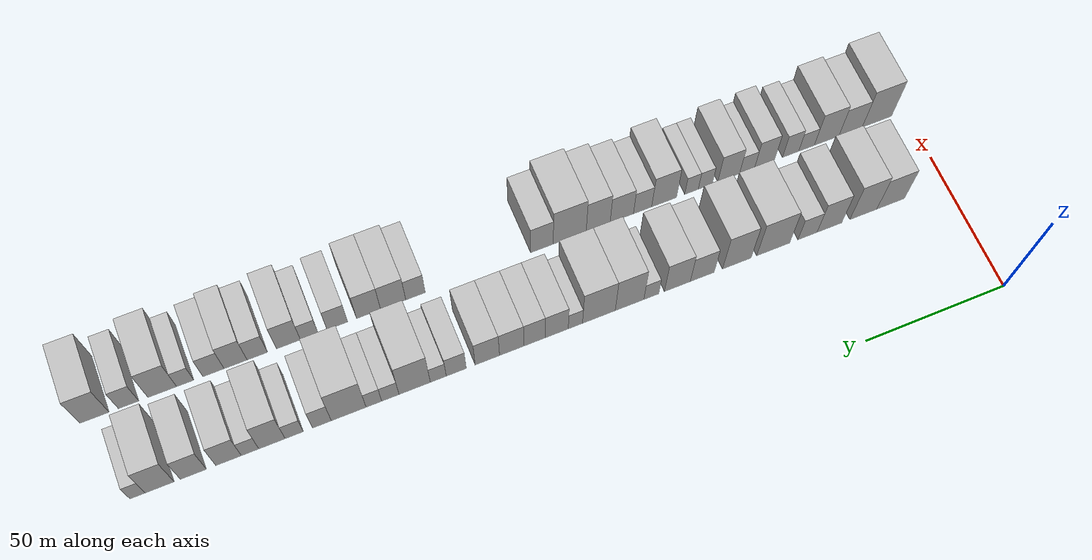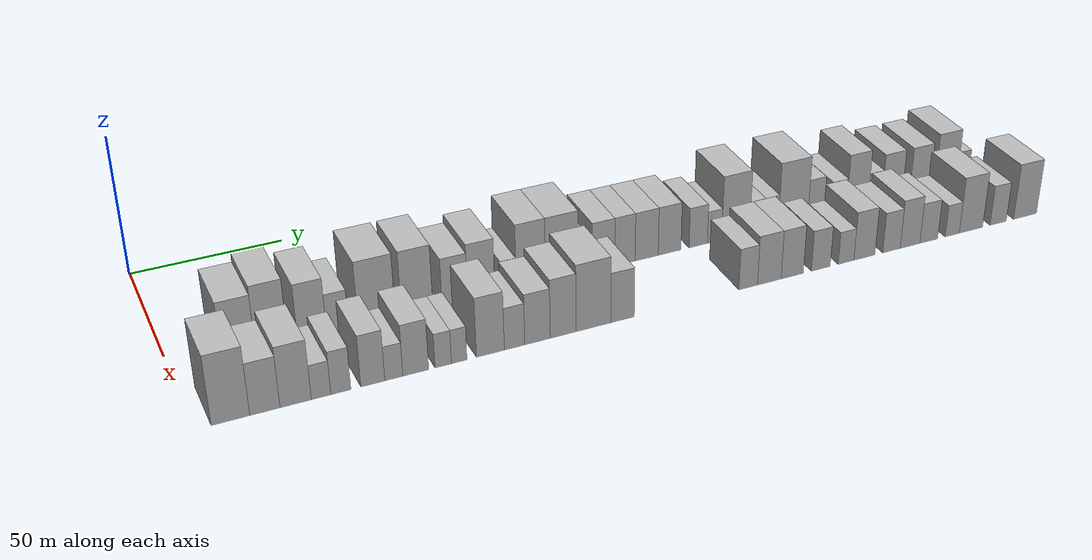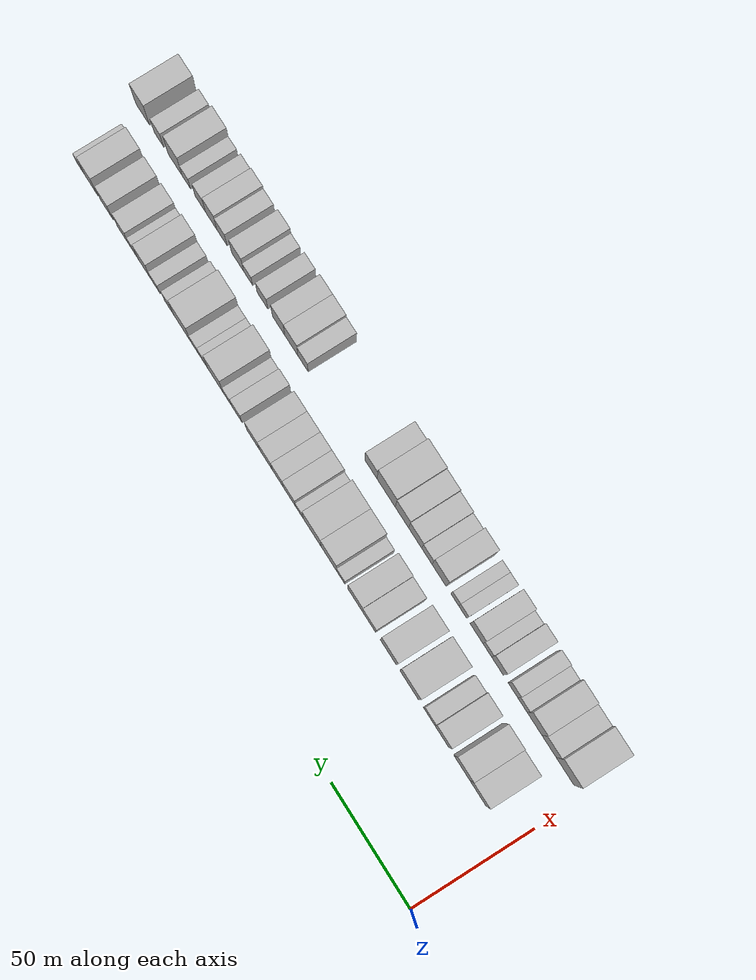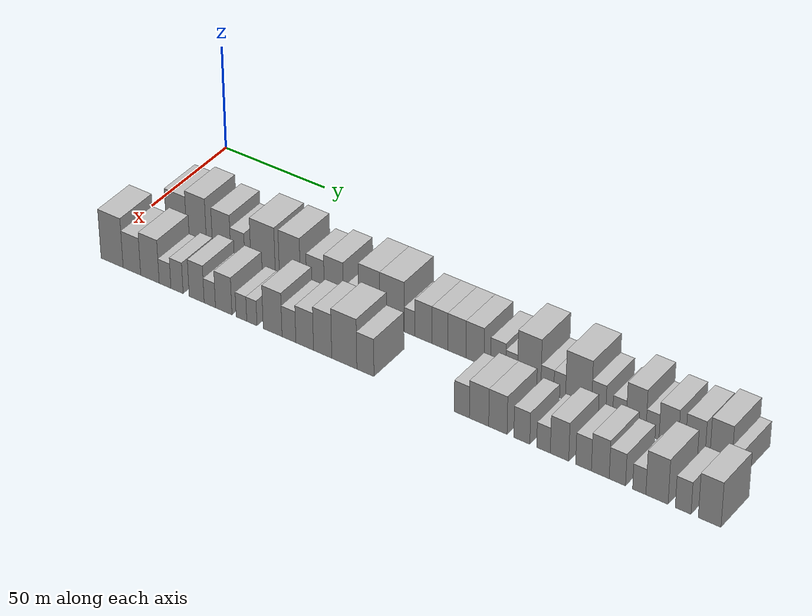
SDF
<sdf version="1.6">
 <world name="default">
  <model name="building_30">
   <static>1</static>
   <pose>50.0000 20.4144 0 0.000000 0.000000 0.000000</pose>
   <link name="link">
    <pose>0 0 10.50 0 0 0</pose>
    <collision name="collision"><geometry><box><size>20.0000 10.2836 21.0000</size></box></geometry></collision>
    <visual name="visual">
     <cast_shadows>0</cast_shadows>
     <geometry><box><size>20.0000 10.2836 21.0000</size></box></geometry>
     <material>
      <script>
       <uri>model://HANNAS_wall/materials/scripts</uri>
       <uri>model://HANNAS_wall/materials/textures</uri>
       <name>vrc/HANNAS_wall</name>
      </script>
     </material>
    </visual>
   </link>
  </model>
  <model name="building_31">
   <static>1</static>
   <pose>50.0000 30.5197 0 0.000000 0.000000 0.000000</pose>
   <link name="link">
    <pose>0 0 12.00 0 0 0</pose>
    <collision name="collision"><geometry><box><size>20.0000 9.9270 24.0000</size></box></geometry></collision>
    <visual name="visual">
     <cast_shadows>0</cast_shadows>
     <geometry><box><size>20.0000 9.9270 24.0000</size></box></geometry>
     <material>
      <script>
       <uri>model://HANNAS_wall/materials/scripts</uri>
       <uri>model://HANNAS_wall/materials/textures</uri>
       <name>vrc/HANNAS_wall</name>
      </script>
     </material>
    </visual>
   </link>
  </model>
  <model name="building_32">
   <static>1</static>
   <pose>50.0000 43.0216 0 0.000000 0.000000 0.000000</pose>
   <link name="link">
    <pose>0 0 10.50 0 0 0</pose>
    <collision name="collision"><geometry><box><size>20.0000 9.0767 21.0000</size></box></geometry></collision>
    <visual name="visual">
     <cast_shadows>0</cast_shadows>
     <geometry><box><size>20.0000 9.0767 21.0000</size></box></geometry>
     <material>
      <script>
       <uri>model://HANNAS_wall/materials/scripts</uri>
       <uri>model://HANNAS_wall/materials/textures</uri>
       <name>vrc/HANNAS_wall</name>
      </script>
     </material>
    </visual>
   </link>
  </model>
  <model name="building_33">
   <static>1</static>
   <pose>50.0000 51.0363 0 0.000000 0.000000 0.000000</pose>
   <link name="link">
    <pose>0 0 7.50 0 0 0</pose>
    <collision name="collision"><geometry><box><size>20.0000 6.9528 15.0000</size></box></geometry></collision>
    <visual name="visual">
     <cast_shadows>0</cast_shadows>
     <geometry><box><size>20.0000 6.9528 15.0000</size></box></geometry>
     <material>
      <script>
       <uri>model://HANNAS_wall/materials/scripts</uri>
       <uri>model://HANNAS_wall/materials/textures</uri>
       <name>vrc/HANNAS_wall</name>
      </script>
     </material>
    </visual>
   </link>
  </model>
  <model name="building_34">
   <static>1</static>
   <pose>50.0000 63.4935 0 0.000000 0.000000 0.000000</pose>
   <link name="link">
    <pose>0 0 12.00 0 0 0</pose>
    <collision name="collision"><geometry><box><size>20.0000 11.9616 24.0000</size></box></geometry></collision>
    <visual name="visual">
     <cast_shadows>0</cast_shadows>
     <geometry><box><size>20.0000 11.9616 24.0000</size></box></geometry>
     <material>
      <script>
       <uri>model://HANNAS_wall/materials/scripts</uri>
       <uri>model://HANNAS_wall/materials/textures</uri>
       <name>vrc/HANNAS_wall</name>
      </script>
     </material>
    </visual>
   </link>
  </model>
  <model name="building_35">
   <static>1</static>
   <pose>50.0000 76.6014 0 0.000000 0.000000 0.000000</pose>
   <link name="link">
    <pose>0 0 12.00 0 0 0</pose>
    <collision name="collision"><geometry><box><size>20.0000 10.2541 24.0000</size></box></geometry></collision>
    <visual name="visual">
     <cast_shadows>0</cast_shadows>
     <geometry><box><size>20.0000 10.2541 24.0000</size></box></geometry>
     <material>
      <script>
       <uri>model://HANNAS_wall/materials/scripts</uri>
       <uri>model://HANNAS_wall/materials/textures</uri>
       <name>vrc/HANNAS_wall</name>
      </script>
     </material>
    </visual>
   </link>
  </model>
  <model name="building_36">
   <static>1</static>
   <pose>50.0000 88.9889 0 0.000000 0.000000 0.000000</pose>
   <link name="link">
    <pose>0 0 9.00 0 0 0</pose>
    <collision name="collision"><geometry><box><size>20.0000 8.5208 18.0000</size></box></geometry></collision>
    <visual name="visual">
     <cast_shadows>0</cast_shadows>
     <geometry><box><size>20.0000 8.5208 18.0000</size></box></geometry>
     <material>
      <script>
       <uri>model://HANNAS_wall/materials/scripts</uri>
       <uri>model://HANNAS_wall/materials/textures</uri>
       <name>vrc/HANNAS_wall</name>
      </script>
     </material>
    </visual>
   </link>
  </model>
  <model name="building_37">
   <static>1</static>
   <pose>50.0000 97.8309 0 0.000000 0.000000 0.000000</pose>
   <link name="link">
    <pose>0 0 10.50 0 0 0</pose>
    <collision name="collision"><geometry><box><size>20.0000 9.1632 21.0000</size></box></geometry></collision>
    <visual name="visual">
     <cast_shadows>0</cast_shadows>
     <geometry><box><size>20.0000 9.1632 21.0000</size></box></geometry>
     <material>
      <script>
       <uri>model://HANNAS_wall/materials/scripts</uri>
       <uri>model://HANNAS_wall/materials/textures</uri>
       <name>vrc/HANNAS_wall</name>
      </script>
     </material>
    </visual>
   </link>
  </model>
  <model name="building_38">
   <static>1</static>
   <pose>50.0000 107.0473 0 0.000000 0.000000 0.000000</pose>
   <link name="link">
    <pose>0 0 6.00 0 0 0</pose>
    <collision name="collision"><geometry><box><size>20.0000 5.2696 12.0000</size></box></geometry></collision>
    <visual name="visual">
     <cast_shadows>0</cast_shadows>
     <geometry><box><size>20.0000 5.2696 12.0000</size></box></geometry>
     <material>
      <script>
       <uri>model://HANNAS_wall/materials/scripts</uri>
       <uri>model://HANNAS_wall/materials/textures</uri>
       <name>vrc/HANNAS_wall</name>
      </script>
     </material>
    </visual>
   </link>
  </model>
  <model name="building_39">
   <static>1</static>
   <pose>50.0000 114.6969 0 0.000000 0.000000 0.000000</pose>
   <link name="link">
    <pose>0 0 12.00 0 0 0</pose>
    <collision name="collision"><geometry><box><size>20.0000 10.0296 24.0000</size></box></geometry></collision>
    <visual name="visual">
     <cast_shadows>0</cast_shadows>
     <geometry><box><size>20.0000 10.0296 24.0000</size></box></geometry>
     <material>
      <script>
       <uri>model://HANNAS_wall/materials/scripts</uri>
       <uri>model://HANNAS_wall/materials/textures</uri>
       <name>vrc/HANNAS_wall</name>
      </script>
     </material>
    </visual>
   </link>
  </model>
  <model name="building_40">
   <static>1</static>
   <pose>50.0000 125.4278 0 0.000000 0.000000 0.000000</pose>
   <link name="link">
    <pose>0 0 12.00 0 0 0</pose>
    <collision name="collision"><geometry><box><size>20.0000 11.4323 24.0000</size></box></geometry></collision>
    <visual name="visual">
     <cast_shadows>0</cast_shadows>
     <geometry><box><size>20.0000 11.4323 24.0000</size></box></geometry>
     <material>
      <script>
       <uri>model://HANNAS_wall/materials/scripts</uri>
       <uri>model://HANNAS_wall/materials/textures</uri>
       <name>vrc/HANNAS_wall</name>
      </script>
     </material>
    </visual>
   </link>
  </model>
  <model name="building_41">
   <static>1</static>
   <pose>50.0000 133.6184 0 0.000000 0.000000 0.000000</pose>
   <link name="link">
    <pose>0 0 6.00 0 0 0</pose>
    <collision name="collision"><geometry><box><size>20.0000 4.9488 12.0000</size></box></geometry></collision>
    <visual name="visual">
     <cast_shadows>0</cast_shadows>
     <geometry><box><size>20.0000 4.9488 12.0000</size></box></geometry>
     <material>
      <script>
       <uri>model://HANNAS_wall/materials/scripts</uri>
       <uri>model://HANNAS_wall/materials/textures</uri>
       <name>vrc/HANNAS_wall</name>
      </script>
     </material>
    </visual>
   </link>
  </model>
  <model name="building_42">
   <static>1</static>
   <pose>50.0000 140.0603 0 0.000000 0.000000 0.000000</pose>
   <link name="link">
    <pose>0 0 9.00 0 0 0</pose>
    <collision name="collision"><geometry><box><size>20.0000 7.9351 18.0000</size></box></geometry></collision>
    <visual name="visual">
     <cast_shadows>0</cast_shadows>
     <geometry><box><size>20.0000 7.9351 18.0000</size></box></geometry>
     <material>
      <script>
       <uri>model://HANNAS_wall/materials/scripts</uri>
       <uri>model://HANNAS_wall/materials/textures</uri>
       <name>vrc/HANNAS_wall</name>
      </script>
     </material>
    </visual>
   </link>
  </model>
  <model name="building_43">
   <static>1</static>
   <pose>50.0000 147.6776 0 0.000000 0.000000 0.000000</pose>
   <link name="link">
    <pose>0 0 9.00 0 0 0</pose>
    <collision name="collision"><geometry><box><size>20.0000 7.2995 18.0000</size></box></geometry></collision>
    <visual name="visual">
     <cast_shadows>0</cast_shadows>
     <geometry><box><size>20.0000 7.2995 18.0000</size></box></geometry>
     <material>
      <script>
       <uri>model://HANNAS_wall/materials/scripts</uri>
       <uri>model://HANNAS_wall/materials/textures</uri>
       <name>vrc/HANNAS_wall</name>
      </script>
     </material>
    </visual>
   </link>
  </model>
  <model name="building_44">
   <static>1</static>
   <pose>50.0000 155.5163 0 0.000000 0.000000 0.000000</pose>
   <link name="link">
    <pose>0 0 9.00 0 0 0</pose>
    <collision name="collision"><geometry><box><size>20.0000 8.3779 18.0000</size></box></geometry></collision>
    <visual name="visual">
     <cast_shadows>0</cast_shadows>
     <geometry><box><size>20.0000 8.3779 18.0000</size></box></geometry>
     <material>
      <script>
       <uri>model://HANNAS_wall/materials/scripts</uri>
       <uri>model://HANNAS_wall/materials/textures</uri>
       <name>vrc/HANNAS_wall</name>
      </script>
     </material>
    </visual>
   </link>
  </model>
  <model name="building_45">
   <static>1</static>
   <pose>50.0000 163.8533 0 0.000000 0.000000 0.000000</pose>
   <link name="link">
    <pose>0 0 9.00 0 0 0</pose>
    <collision name="collision"><geometry><box><size>20.0000 8.2960 18.0000</size></box></geometry></collision>
    <visual name="visual">
     <cast_shadows>0</cast_shadows>
     <geometry><box><size>20.0000 8.2960 18.0000</size></box></geometry>
     <material>
      <script>
       <uri>model://HANNAS_wall/materials/scripts</uri>
       <uri>model://HANNAS_wall/materials/textures</uri>
       <name>vrc/HANNAS_wall</name>
      </script>
     </material>
    </visual>
   </link>
  </model>
  <model name="building_46">
   <static>1</static>
   <pose>50.0000 174.3933 0 0.000000 0.000000 0.000000</pose>
   <link name="link">
    <pose>0 0 7.50 0 0 0</pose>
    <collision name="collision"><geometry><box><size>20.0000 6.7841 15.0000</size></box></geometry></collision>
    <visual name="visual">
     <cast_shadows>0</cast_shadows>
     <geometry><box><size>20.0000 6.7841 15.0000</size></box></geometry>
     <material>
      <script>
       <uri>model://HANNAS_wall/materials/scripts</uri>
       <uri>model://HANNAS_wall/materials/textures</uri>
       <name>vrc/HANNAS_wall</name>
      </script>
     </material>
    </visual>
   </link>
  </model>
  <model name="building_47">
   <static>1</static>
   <pose>50.0000 180.4673 0 0.000000 0.000000 0.000000</pose>
   <link name="link">
    <pose>0 0 6.00 0 0 0</pose>
    <collision name="collision"><geometry><box><size>20.0000 5.3639 12.0000</size></box></geometry></collision>
    <visual name="visual">
     <cast_shadows>0</cast_shadows>
     <geometry><box><size>20.0000 5.3639 12.0000</size></box></geometry>
     <material>
      <script>
       <uri>model://HANNAS_wall/materials/scripts</uri>
       <uri>model://HANNAS_wall/materials/textures</uri>
       <name>vrc/HANNAS_wall</name>
      </script>
     </material>
    </visual>
   </link>
  </model>
  <model name="building_48">
   <static>1</static>
   <pose>50.0000 188.4037 0 0.000000 0.000000 0.000000</pose>
   <link name="link">
    <pose>0 0 12.00 0 0 0</pose>
    <collision name="collision"><geometry><box><size>20.0000 10.5089 24.0000</size></box></geometry></collision>
    <visual name="visual">
     <cast_shadows>0</cast_shadows>
     <geometry><box><size>20.0000 10.5089 24.0000</size></box></geometry>
     <material>
      <script>
       <uri>model://HANNAS_wall/materials/scripts</uri>
       <uri>model://HANNAS_wall/materials/textures</uri>
       <name>vrc/HANNAS_wall</name>
      </script>
     </material>
    </visual>
   </link>
  </model>
  <model name="building_49">
   <static>1</static>
   <pose>50.0000 196.5371 0 0.000000 0.000000 0.000000</pose>
   <link name="link">
    <pose>0 0 6.00 0 0 0</pose>
    <collision name="collision"><geometry><box><size>20.0000 5.7578 12.0000</size></box></geometry></collision>
    <visual name="visual">
     <cast_shadows>0</cast_shadows>
     <geometry><box><size>20.0000 5.7578 12.0000</size></box></geometry>
     <material>
      <script>
       <uri>model://HANNAS_wall/materials/scripts</uri>
       <uri>model://HANNAS_wall/materials/textures</uri>
       <name>vrc/HANNAS_wall</name>
      </script>
     </material>
    </visual>
   </link>
  </model>
  <model name="building_50">
   <static>1</static>
   <pose>50.0000 202.0249 0 0.000000 0.000000 0.000000</pose>
   <link name="link">
    <pose>0 0 6.00 0 0 0</pose>
    <collision name="collision"><geometry><box><size>20.0000 5.2178 12.0000</size></box></geometry></collision>
    <visual name="visual">
     <cast_shadows>0</cast_shadows>
     <geometry><box><size>20.0000 5.2178 12.0000</size></box></geometry>
     <material>
      <script>
       <uri>model://HANNAS_wall/materials/scripts</uri>
       <uri>model://HANNAS_wall/materials/textures</uri>
       <name>vrc/HANNAS_wall</name>
      </script>
     </material>
    </visual>
   </link>
  </model>
  <model name="building_51">
   <static>1</static>
   <pose>50.0000 210.3792 0 0.000000 0.000000 0.000000</pose>
   <link name="link">
    <pose>0 0 12.00 0 0 0</pose>
    <collision name="collision"><geometry><box><size>20.0000 11.4907 24.0000</size></box></geometry></collision>
    <visual name="visual">
     <cast_shadows>0</cast_shadows>
     <geometry><box><size>20.0000 11.4907 24.0000</size></box></geometry>
     <material>
      <script>
       <uri>model://HANNAS_wall/materials/scripts</uri>
       <uri>model://HANNAS_wall/materials/textures</uri>
       <name>vrc/HANNAS_wall</name>
      </script>
     </material>
    </visual>
   </link>
  </model>
  <model name="building_52">
   <static>1</static>
   <pose>50.0000 219.2286 0 0.000000 0.000000 0.000000</pose>
   <link name="link">
    <pose>0 0 7.50 0 0 0</pose>
    <collision name="collision"><geometry><box><size>20.0000 6.2081 15.0000</size></box></geometry></collision>
    <visual name="visual">
     <cast_shadows>0</cast_shadows>
     <geometry><box><size>20.0000 6.2081 15.0000</size></box></geometry>
     <material>
      <script>
       <uri>model://HANNAS_wall/materials/scripts</uri>
       <uri>model://HANNAS_wall/materials/textures</uri>
       <name>vrc/HANNAS_wall</name>
      </script>
     </material>
    </visual>
   </link>
  </model>
  <model name="building_53">
   <static>1</static>
   <pose>50.0000 228.3093 0 0.000000 0.000000 0.000000</pose>
   <link name="link">
    <pose>0 0 6.00 0 0 0</pose>
    <collision name="collision"><geometry><box><size>20.0000 5.9532 12.0000</size></box></geometry></collision>
    <visual name="visual">
     <cast_shadows>0</cast_shadows>
     <geometry><box><size>20.0000 5.9532 12.0000</size></box></geometry>
     <material>
      <script>
       <uri>model://HANNAS_wall/materials/scripts</uri>
       <uri>model://HANNAS_wall/materials/textures</uri>
       <name>vrc/HANNAS_wall</name>
      </script>
     </material>
    </visual>
   </link>
  </model>
  <model name="building_54">
   <static>1</static>
   <pose>50.0000 235.5698 0 0.000000 0.000000 0.000000</pose>
   <link name="link">
    <pose>0 0 10.50 0 0 0</pose>
    <collision name="collision"><geometry><box><size>20.0000 8.5678 21.0000</size></box></geometry></collision>
    <visual name="visual">
     <cast_shadows>0</cast_shadows>
     <geometry><box><size>20.0000 8.5678 21.0000</size></box></geometry>
     <material>
      <script>
       <uri>model://HANNAS_wall/materials/scripts</uri>
       <uri>model://HANNAS_wall/materials/textures</uri>
       <name>vrc/HANNAS_wall</name>
      </script>
     </material>
    </visual>
   </link>
  </model>
  <model name="building_55">
   <static>1</static>
   <pose>50.0000 242.6875 0 0.000000 0.000000 0.000000</pose>
   <link name="link">
    <pose>0 0 6.00 0 0 0</pose>
    <collision name="collision"><geometry><box><size>20.0000 5.6678 12.0000</size></box></geometry></collision>
    <visual name="visual">
     <cast_shadows>0</cast_shadows>
     <geometry><box><size>20.0000 5.6678 12.0000</size></box></geometry>
     <material>
      <script>
       <uri>model://HANNAS_wall/materials/scripts</uri>
       <uri>model://HANNAS_wall/materials/textures</uri>
       <name>vrc/HANNAS_wall</name>
      </script>
     </material>
    </visual>
   </link>
  </model>
  <model name="building_56">
   <static>1</static>
   <pose>50.0000 249.6599 0 0.000000 0.000000 0.000000</pose>
   <link name="link">
    <pose>0 0 9.00 0 0 0</pose>
    <collision name="collision"><geometry><box><size>20.0000 8.2769 18.0000</size></box></geometry></collision>
    <visual name="visual">
     <cast_shadows>0</cast_shadows>
     <geometry><box><size>20.0000 8.2769 18.0000</size></box></geometry>
     <material>
      <script>
       <uri>model://HANNAS_wall/materials/scripts</uri>
       <uri>model://HANNAS_wall/materials/textures</uri>
       <name>vrc/HANNAS_wall</name>
      </script>
     </material>
    </visual>
   </link>
  </model>
  <model name="building_57">
   <static>1</static>
   <pose>50.0000 260.9742 0 0.000000 0.000000 0.000000</pose>
   <link name="link">
    <pose>0 0 9.00 0 0 0</pose>
    <collision name="collision"><geometry><box><size>20.0000 8.3517 18.0000</size></box></geometry></collision>
    <visual name="visual">
     <cast_shadows>0</cast_shadows>
     <geometry><box><size>20.0000 8.3517 18.0000</size></box></geometry>
     <material>
      <script>
       <uri>model://HANNAS_wall/materials/scripts</uri>
       <uri>model://HANNAS_wall/materials/textures</uri>
       <name>vrc/HANNAS_wall</name>
      </script>
     </material>
    </visual>
   </link>
  </model>
  <model name="building_58">
   <static>1</static>
   <pose>50.0000 271.7497 0 0.000000 0.000000 0.000000</pose>
   <link name="link">
    <pose>0 0 10.50 0 0 0</pose>
    <collision name="collision"><geometry><box><size>20.0000 9.1994 21.0000</size></box></geometry></collision>
    <visual name="visual">
     <cast_shadows>0</cast_shadows>
     <geometry><box><size>20.0000 9.1994 21.0000</size></box></geometry>
     <material>
      <script>
       <uri>model://HANNAS_wall/materials/scripts</uri>
       <uri>model://HANNAS_wall/materials/textures</uri>
       <name>vrc/HANNAS_wall</name>
      </script>
     </material>
    </visual>
   </link>
  </model>
  <model name="building_59">
   <static>1</static>
   <pose>50.0000 278.7673 0 0.000000 0.000000 0.000000</pose>
   <link name="link">
    <pose>0 0 6.00 0 0 0</pose>
    <collision name="collision"><geometry><box><size>20.0000 4.8358 12.0000</size></box></geometry></collision>
    <visual name="visual">
     <cast_shadows>0</cast_shadows>
     <geometry><box><size>20.0000 4.8358 12.0000</size></box></geometry>
     <material>
      <script>
       <uri>model://HANNAS_wall/materials/scripts</uri>
       <uri>model://HANNAS_wall/materials/textures</uri>
       <name>vrc/HANNAS_wall</name>
      </script>
     </material>
    </visual>
   </link>
  </model>
  <model name="building_89">
   <static>1</static>
   <pose>79.0000 10.5630 0 0.000000 0.000000 0.000000</pose>
   <link name="link">
    <pose>0 0 12.00 0 0 0</pose>
    <collision name="collision"><geometry><box><size>20.0000 11.1306 24.0000</size></box></geometry></collision>
    <visual name="visual">
     <cast_shadows>0</cast_shadows>
     <geometry><box><size>20.0000 11.1306 24.0000</size></box></geometry>
     <material>
      <script>
       <uri>model://HANNAS_wall/materials/scripts</uri>
       <uri>model://HANNAS_wall/materials/textures</uri>
       <name>vrc/HANNAS_wall</name>
      </script>
     </material>
    </visual>
   </link>
  </model>
  <model name="building_90">
   <static>1</static>
   <pose>79.0000 20.5365 0 0.000000 0.000000 0.000000</pose>
   <link name="link">
    <pose>0 0 9.00 0 0 0</pose>
    <collision name="collision"><geometry><box><size>20.0000 8.8163 18.0000</size></box></geometry></collision>
    <visual name="visual">
     <cast_shadows>0</cast_shadows>
     <geometry><box><size>20.0000 8.8163 18.0000</size></box></geometry>
     <material>
      <script>
       <uri>model://HANNAS_wall/materials/scripts</uri>
       <uri>model://HANNAS_wall/materials/textures</uri>
       <name>vrc/HANNAS_wall</name>
      </script>
     </material>
    </visual>
   </link>
  </model>
  <model name="building_91">
   <static>1</static>
   <pose>79.0000 29.5647 0 0.000000 0.000000 0.000000</pose>
   <link name="link">
    <pose>0 0 10.50 0 0 0</pose>
    <collision name="collision"><geometry><box><size>20.0000 9.2402 21.0000</size></box></geometry></collision>
    <visual name="visual">
     <cast_shadows>0</cast_shadows>
     <geometry><box><size>20.0000 9.2402 21.0000</size></box></geometry>
     <material>
      <script>
       <uri>model://HANNAS_wall/materials/scripts</uri>
       <uri>model://HANNAS_wall/materials/textures</uri>
       <name>vrc/HANNAS_wall</name>
      </script>
     </material>
    </visual>
   </link>
  </model>
  <model name="building_92">
   <static>1</static>
   <pose>79.0000 37.0954 0 0.000000 0.000000 0.000000</pose>
   <link name="link">
    <pose>0 0 6.00 0 0 0</pose>
    <collision name="collision"><geometry><box><size>20.0000 5.8212 12.0000</size></box></geometry></collision>
    <visual name="visual">
     <cast_shadows>0</cast_shadows>
     <geometry><box><size>20.0000 5.8212 12.0000</size></box></geometry>
     <material>
      <script>
       <uri>model://HANNAS_wall/materials/scripts</uri>
       <uri>model://HANNAS_wall/materials/textures</uri>
       <name>vrc/HANNAS_wall</name>
      </script>
     </material>
    </visual>
   </link>
  </model>
  <model name="building_93">
   <static>1</static>
   <pose>79.0000 43.0272 0 0.000000 0.000000 0.000000</pose>
   <link name="link">
    <pose>0 0 7.50 0 0 0</pose>
    <collision name="collision"><geometry><box><size>20.0000 6.0424 15.0000</size></box></geometry></collision>
    <visual name="visual">
     <cast_shadows>0</cast_shadows>
     <geometry><box><size>20.0000 6.0424 15.0000</size></box></geometry>
     <material>
      <script>
       <uri>model://HANNAS_wall/materials/scripts</uri>
       <uri>model://HANNAS_wall/materials/textures</uri>
       <name>vrc/HANNAS_wall</name>
      </script>
     </material>
    </visual>
   </link>
  </model>
  <model name="building_94">
   <static>1</static>
   <pose>79.0000 52.7205 0 0.000000 0.000000 0.000000</pose>
   <link name="link">
    <pose>0 0 9.00 0 0 0</pose>
    <collision name="collision"><geometry><box><size>20.0000 7.3443 18.0000</size></box></geometry></collision>
    <visual name="visual">
     <cast_shadows>0</cast_shadows>
     <geometry><box><size>20.0000 7.3443 18.0000</size></box></geometry>
     <material>
      <script>
       <uri>model://HANNAS_wall/materials/scripts</uri>
       <uri>model://HANNAS_wall/materials/textures</uri>
       <name>vrc/HANNAS_wall</name>
      </script>
     </material>
    </visual>
   </link>
  </model>
  <model name="building_95">
   <static>1</static>
   <pose>79.0000 59.1603 0 0.000000 0.000000 0.000000</pose>
   <link name="link">
    <pose>0 0 6.00 0 0 0</pose>
    <collision name="collision"><geometry><box><size>20.0000 5.5354 12.0000</size></box></geometry></collision>
    <visual name="visual">
     <cast_shadows>0</cast_shadows>
     <geometry><box><size>20.0000 5.5354 12.0000</size></box></geometry>
     <material>
      <script>
       <uri>model://HANNAS_wall/materials/scripts</uri>
       <uri>model://HANNAS_wall/materials/textures</uri>
       <name>vrc/HANNAS_wall</name>
      </script>
     </material>
    </visual>
   </link>
  </model>
  <model name="building_96">
   <static>1</static>
   <pose>79.0000 65.9407 0 0.000000 0.000000 0.000000</pose>
   <link name="link">
    <pose>0 0 9.00 0 0 0</pose>
    <collision name="collision"><geometry><box><size>20.0000 8.0253 18.0000</size></box></geometry></collision>
    <visual name="visual">
     <cast_shadows>0</cast_shadows>
     <geometry><box><size>20.0000 8.0253 18.0000</size></box></geometry>
     <material>
      <script>
       <uri>model://HANNAS_wall/materials/scripts</uri>
       <uri>model://HANNAS_wall/materials/textures</uri>
       <name>vrc/HANNAS_wall</name>
      </script>
     </material>
    </visual>
   </link>
  </model>
  <model name="building_97">
   <static>1</static>
   <pose>79.0000 74.5248 0 0.000000 0.000000 0.000000</pose>
   <link name="link">
    <pose>0 0 6.00 0 0 0</pose>
    <collision name="collision"><geometry><box><size>20.0000 5.1430 12.0000</size></box></geometry></collision>
    <visual name="visual">
     <cast_shadows>0</cast_shadows>
     <geometry><box><size>20.0000 5.1430 12.0000</size></box></geometry>
     <material>
      <script>
       <uri>model://HANNAS_wall/materials/scripts</uri>
       <uri>model://HANNAS_wall/materials/textures</uri>
       <name>vrc/HANNAS_wall</name>
      </script>
     </material>
    </visual>
   </link>
  </model>
  <model name="building_98">
   <static>1</static>
   <pose>79.0000 79.5647 0 0.000000 0.000000 0.000000</pose>
   <link name="link">
    <pose>0 0 6.00 0 0 0</pose>
    <collision name="collision"><geometry><box><size>20.0000 4.9368 12.0000</size></box></geometry></collision>
    <visual name="visual">
     <cast_shadows>0</cast_shadows>
     <geometry><box><size>20.0000 4.9368 12.0000</size></box></geometry>
     <material>
      <script>
       <uri>model://HANNAS_wall/materials/scripts</uri>
       <uri>model://HANNAS_wall/materials/textures</uri>
       <name>vrc/HANNAS_wall</name>
      </script>
     </material>
    </visual>
   </link>
  </model>
  <model name="building_99">
   <static>1</static>
   <pose>79.0000 89.5341 0 0.000000 0.000000 0.000000</pose>
   <link name="link">
    <pose>0 0 10.50 0 0 0</pose>
    <collision name="collision"><geometry><box><size>20.0000 9.0020 21.0000</size></box></geometry></collision>
    <visual name="visual">
     <cast_shadows>0</cast_shadows>
     <geometry><box><size>20.0000 9.0020 21.0000</size></box></geometry>
     <material>
      <script>
       <uri>model://HANNAS_wall/materials/scripts</uri>
       <uri>model://HANNAS_wall/materials/textures</uri>
       <name>vrc/HANNAS_wall</name>
      </script>
     </material>
    </visual>
   </link>
  </model>
  <model name="building_100">
   <static>1</static>
   <pose>79.0000 97.3236 0 0.000000 0.000000 0.000000</pose>
   <link name="link">
    <pose>0 0 7.50 0 0 0</pose>
    <collision name="collision"><geometry><box><size>20.0000 6.5770 15.0000</size></box></geometry></collision>
    <visual name="visual">
     <cast_shadows>0</cast_shadows>
     <geometry><box><size>20.0000 6.5770 15.0000</size></box></geometry>
     <material>
      <script>
       <uri>model://HANNAS_wall/materials/scripts</uri>
       <uri>model://HANNAS_wall/materials/textures</uri>
       <name>vrc/HANNAS_wall</name>
      </script>
     </material>
    </visual>
   </link>
  </model>
  <model name="building_101">
   <static>1</static>
   <pose>79.0000 104.7978 0 0.000000 0.000000 0.000000</pose>
   <link name="link">
    <pose>0 0 9.00 0 0 0</pose>
    <collision name="collision"><geometry><box><size>20.0000 8.3715 18.0000</size></box></geometry></collision>
    <visual name="visual">
     <cast_shadows>0</cast_shadows>
     <geometry><box><size>20.0000 8.3715 18.0000</size></box></geometry>
     <material>
      <script>
       <uri>model://HANNAS_wall/materials/scripts</uri>
       <uri>model://HANNAS_wall/materials/textures</uri>
       <name>vrc/HANNAS_wall</name>
      </script>
     </material>
    </visual>
   </link>
  </model>
  <model name="building_102">
   <static>1</static>
   <pose>79.0000 113.2650 0 0.000000 0.000000 0.000000</pose>
   <link name="link">
    <pose>0 0 10.50 0 0 0</pose>
    <collision name="collision"><geometry><box><size>20.0000 8.5630 21.0000</size></box></geometry></collision>
    <visual name="visual">
     <cast_shadows>0</cast_shadows>
     <geometry><box><size>20.0000 8.5630 21.0000</size></box></geometry>
     <material>
      <script>
       <uri>model://HANNAS_wall/materials/scripts</uri>
       <uri>model://HANNAS_wall/materials/textures</uri>
       <name>vrc/HANNAS_wall</name>
      </script>
     </material>
    </visual>
   </link>
  </model>
  <model name="building_103">
   <static>1</static>
   <pose>79.0000 123.4095 0 0.000000 0.000000 0.000000</pose>
   <link name="link">
    <pose>0 0 12.00 0 0 0</pose>
    <collision name="collision"><geometry><box><size>20.0000 11.7258 24.0000</size></box></geometry></collision>
    <visual name="visual">
     <cast_shadows>0</cast_shadows>
     <geometry><box><size>20.0000 11.7258 24.0000</size></box></geometry>
     <material>
      <script>
       <uri>model://HANNAS_wall/materials/scripts</uri>
       <uri>model://HANNAS_wall/materials/textures</uri>
       <name>vrc/HANNAS_wall</name>
      </script>
     </material>
    </visual>
   </link>
  </model>
  <model name="building_104">
   <static>1</static>
   <pose>79.0000 133.2459 0 0.000000 0.000000 0.000000</pose>
   <link name="link">
    <pose>0 0 9.00 0 0 0</pose>
    <collision name="collision"><geometry><box><size>20.0000 7.9470 18.0000</size></box></geometry></collision>
    <visual name="visual">
     <cast_shadows>0</cast_shadows>
     <geometry><box><size>20.0000 7.9470 18.0000</size></box></geometry>
     <material>
      <script>
       <uri>model://HANNAS_wall/materials/scripts</uri>
       <uri>model://HANNAS_wall/materials/textures</uri>
       <name>vrc/HANNAS_wall</name>
      </script>
     </material>
    </visual>
   </link>
  </model>
  <model name="building_105">
   <static>1</static>
   <pose>79.0000 177.2833 0 0.000000 0.000000 0.000000</pose>
   <link name="link">
    <pose>0 0 7.50 0 0 0</pose>
    <collision name="collision"><geometry><box><size>20.0000 6.7093 15.0000</size></box></geometry></collision>
    <visual name="visual">
     <cast_shadows>0</cast_shadows>
     <geometry><box><size>20.0000 6.7093 15.0000</size></box></geometry>
     <material>
      <script>
       <uri>model://HANNAS_wall/materials/scripts</uri>
       <uri>model://HANNAS_wall/materials/textures</uri>
       <name>vrc/HANNAS_wall</name>
      </script>
     </material>
    </visual>
   </link>
  </model>
  <model name="building_106">
   <static>1</static>
   <pose>79.0000 184.9532 0 0.000000 0.000000 0.000000</pose>
   <link name="link">
    <pose>0 0 9.00 0 0 0</pose>
    <collision name="collision"><geometry><box><size>20.0000 8.6306 18.0000</size></box></geometry></collision>
    <visual name="visual">
     <cast_shadows>0</cast_shadows>
     <geometry><box><size>20.0000 8.6306 18.0000</size></box></geometry>
     <material>
      <script>
       <uri>model://HANNAS_wall/materials/scripts</uri>
       <uri>model://HANNAS_wall/materials/textures</uri>
       <name>vrc/HANNAS_wall</name>
      </script>
     </material>
    </visual>
   </link>
  </model>
  <model name="building_107">
   <static>1</static>
   <pose>79.0000 193.3510 0 0.000000 0.000000 0.000000</pose>
   <link name="link">
    <pose>0 0 9.00 0 0 0</pose>
    <collision name="collision"><geometry><box><size>20.0000 8.1650 18.0000</size></box></geometry></collision>
    <visual name="visual">
     <cast_shadows>0</cast_shadows>
     <geometry><box><size>20.0000 8.1650 18.0000</size></box></geometry>
     <material>
      <script>
       <uri>model://HANNAS_wall/materials/scripts</uri>
       <uri>model://HANNAS_wall/materials/textures</uri>
       <name>vrc/HANNAS_wall</name>
      </script>
     </material>
    </visual>
   </link>
  </model>
  <model name="building_108">
   <static>1</static>
   <pose>79.0000 203.9550 0 0.000000 0.000000 0.000000</pose>
   <link name="link">
    <pose>0 0 7.50 0 0 0</pose>
    <collision name="collision"><geometry><box><size>20.0000 7.0429 15.0000</size></box></geometry></collision>
    <visual name="visual">
     <cast_shadows>0</cast_shadows>
     <geometry><box><size>20.0000 7.0429 15.0000</size></box></geometry>
     <material>
      <script>
       <uri>model://HANNAS_wall/materials/scripts</uri>
       <uri>model://HANNAS_wall/materials/textures</uri>
       <name>vrc/HANNAS_wall</name>
      </script>
     </material>
    </visual>
   </link>
  </model>
  <model name="building_109">
   <static>1</static>
   <pose>79.0000 213.4461 0 0.000000 0.000000 0.000000</pose>
   <link name="link">
    <pose>0 0 6.00 0 0 0</pose>
    <collision name="collision"><geometry><box><size>20.0000 5.9393 12.0000</size></box></geometry></collision>
    <visual name="visual">
     <cast_shadows>0</cast_shadows>
     <geometry><box><size>20.0000 5.9393 12.0000</size></box></geometry>
     <material>
      <script>
       <uri>model://HANNAS_wall/materials/scripts</uri>
       <uri>model://HANNAS_wall/materials/textures</uri>
       <name>vrc/HANNAS_wall</name>
      </script>
     </material>
    </visual>
   </link>
  </model>
  <model name="building_110">
   <static>1</static>
   <pose>79.0000 220.4266 0 0.000000 0.000000 0.000000</pose>
   <link name="link">
    <pose>0 0 9.00 0 0 0</pose>
    <collision name="collision"><geometry><box><size>20.0000 8.0216 18.0000</size></box></geometry></collision>
    <visual name="visual">
     <cast_shadows>0</cast_shadows>
     <geometry><box><size>20.0000 8.0216 18.0000</size></box></geometry>
     <material>
      <script>
       <uri>model://HANNAS_wall/materials/scripts</uri>
       <uri>model://HANNAS_wall/materials/textures</uri>
       <name>vrc/HANNAS_wall</name>
      </script>
     </material>
    </visual>
   </link>
  </model>
  <model name="building_111">
   <static>1</static>
   <pose>79.0000 230.8277 0 0.000000 0.000000 0.000000</pose>
   <link name="link">
    <pose>0 0 7.50 0 0 0</pose>
    <collision name="collision"><geometry><box><size>20.0000 6.7806 15.0000</size></box></geometry></collision>
    <visual name="visual">
     <cast_shadows>0</cast_shadows>
     <geometry><box><size>20.0000 6.7806 15.0000</size></box></geometry>
     <material>
      <script>
       <uri>model://HANNAS_wall/materials/scripts</uri>
       <uri>model://HANNAS_wall/materials/textures</uri>
       <name>vrc/HANNAS_wall</name>
      </script>
     </material>
    </visual>
   </link>
  </model>
  <model name="building_112">
   <static>1</static>
   <pose>79.0000 238.0454 0 0.000000 0.000000 0.000000</pose>
   <link name="link">
    <pose>0 0 9.00 0 0 0</pose>
    <collision name="collision"><geometry><box><size>20.0000 7.6549 18.0000</size></box></geometry></collision>
    <visual name="visual">
     <cast_shadows>0</cast_shadows>
     <geometry><box><size>20.0000 7.6549 18.0000</size></box></geometry>
     <material>
      <script>
       <uri>model://HANNAS_wall/materials/scripts</uri>
       <uri>model://HANNAS_wall/materials/textures</uri>
       <name>vrc/HANNAS_wall</name>
      </script>
     </material>
    </visual>
   </link>
  </model>
  <model name="building_113">
   <static>1</static>
   <pose>79.0000 245.3601 0 0.000000 0.000000 0.000000</pose>
   <link name="link">
    <pose>0 0 7.50 0 0 0</pose>
    <collision name="collision"><geometry><box><size>20.0000 6.9745 15.0000</size></box></geometry></collision>
    <visual name="visual">
     <cast_shadows>0</cast_shadows>
     <geometry><box><size>20.0000 6.9745 15.0000</size></box></geometry>
     <material>
      <script>
       <uri>model://HANNAS_wall/materials/scripts</uri>
       <uri>model://HANNAS_wall/materials/textures</uri>
       <name>vrc/HANNAS_wall</name>
      </script>
     </material>
    </visual>
   </link>
  </model>
  <model name="building_114">
   <static>1</static>
   <pose>79.0000 254.6636 0 0.000000 0.000000 0.000000</pose>
   <link name="link">
    <pose>0 0 6.00 0 0 0</pose>
    <collision name="collision"><geometry><box><size>20.0000 5.6324 12.0000</size></box></geometry></collision>
    <visual name="visual">
     <cast_shadows>0</cast_shadows>
     <geometry><box><size>20.0000 5.6324 12.0000</size></box></geometry>
     <material>
      <script>
       <uri>model://HANNAS_wall/materials/scripts</uri>
       <uri>model://HANNAS_wall/materials/textures</uri>
       <name>vrc/HANNAS_wall</name>
      </script>
     </material>
    </visual>
   </link>
  </model>
  <model name="building_115">
   <static>1</static>
   <pose>79.0000 262.1644 0 0.000000 0.000000 0.000000</pose>
   <link name="link">
    <pose>0 0 10.50 0 0 0</pose>
    <collision name="collision"><geometry><box><size>20.0000 9.3692 21.0000</size></box></geometry></collision>
    <visual name="visual">
     <cast_shadows>0</cast_shadows>
     <geometry><box><size>20.0000 9.3692 21.0000</size></box></geometry>
     <material>
      <script>
       <uri>model://HANNAS_wall/materials/scripts</uri>
       <uri>model://HANNAS_wall/materials/textures</uri>
       <name>vrc/HANNAS_wall</name>
      </script>
     </material>
    </visual>
   </link>
  </model>
  <model name="building_116">
   <static>1</static>
   <pose>79.0000 273.1492 0 0.000000 0.000000 0.000000</pose>
   <link name="link">
    <pose>0 0 7.50 0 0 0</pose>
    <collision name="collision"><geometry><box><size>20.0000 6.6004 15.0000</size></box></geometry></collision>
    <visual name="visual">
     <cast_shadows>0</cast_shadows>
     <geometry><box><size>20.0000 6.6004 15.0000</size></box></geometry>
     <material>
      <script>
       <uri>model://HANNAS_wall/materials/scripts</uri>
       <uri>model://HANNAS_wall/materials/textures</uri>
       <name>vrc/HANNAS_wall</name>
      </script>
     </material>
    </visual>
   </link>
  </model>
  <model name="building_117">
   <static>1</static>
   <pose>79.0000 284.1680 0 0.000000 0.000000 0.000000</pose>
   <link name="link">
    <pose>0 0 10.50 0 0 0</pose>
    <collision name="collision"><geometry><box><size>20.0000 9.4372 21.0000</size></box></geometry></collision>
    <visual name="visual">
     <cast_shadows>0</cast_shadows>
     <geometry><box><size>20.0000 9.4372 21.0000</size></box></geometry>
     <material>
      <script>
       <uri>model://HANNAS_wall/materials/scripts</uri>
       <uri>model://HANNAS_wall/materials/textures</uri>
       <name>vrc/HANNAS_wall</name>
      </script>
     </material>
    </visual>
   </link>
  </model>
 </world>
</sdf>
